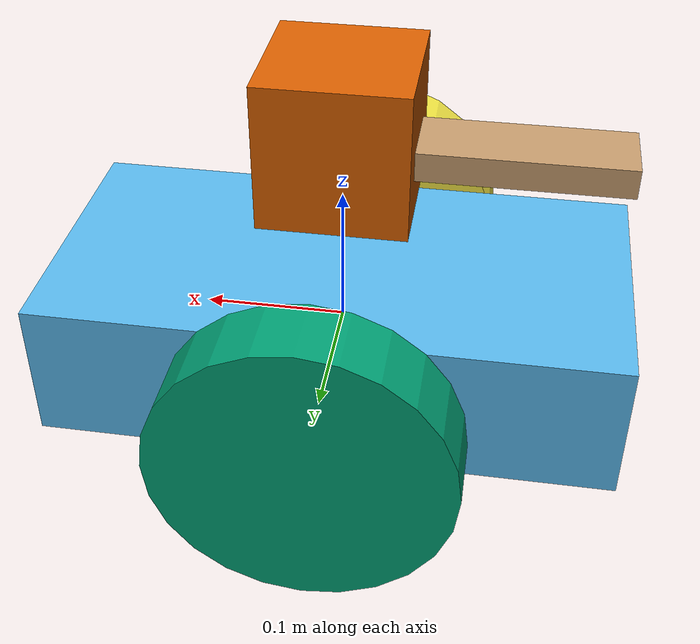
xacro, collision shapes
<?xml version='1.0'?>

<robot name="mogi_bot" xmlns:xacro="http://www.ros.org/wiki/xacro">

  <!-- ROBOT NAMESPACE -->

  <xacro:arg name="robot_name" default="robot1"/>

  <xacro:property name="robot_name" value="$(arg robot_name)"/>

  <!-- GAZEBO + MATERIALS -->

  <xacro:include filename="$(find virtual_lab)/urdf/mogi_bot.gazebo" />

  <xacro:include filename="$(find virtual_lab)/urdf/materials.xacro" />

  <!-- BASE FOOTPRINT -->

  <link name="${robot_name}/base_footprint"/>

  <!-- BASE LINK -->

  <joint name="${robot_name}/base_footprint_joint" type="fixed">

    <origin xyz="0 0 0" rpy="0 0 0"/>

    <parent link="${robot_name}/base_footprint"/>

    <child link="${robot_name}/base_link"/>

  </joint>

  <link name="${robot_name}/base_link">

    <pose>0 0 0.1 0 0 0</pose>

    <inertial>

      <mass value="15.0"/>

      <origin xyz="0 0 0" rpy="0 0 0"/>

      <inertia
        ixx="0.0625"
        ixy="0"
        ixz="0"
        iyy="0.2125"
        iyz="0"
        izz="0.25"/>

    </inertial>

    <collision name="collision">

      <origin xyz="0 0 0" rpy="0 0 0"/>

      <geometry>

        <box size=".4 .2 .1"/>

      </geometry>

    </collision>

    <visual name="base_link_visual">

      <origin xyz="0 0 0" rpy="0 0 0"/>

      <geometry>

        <mesh filename="package://virtual_lab/meshes/mogi_bot.dae"/>

      </geometry>

    </visual>

    <!-- Rear caster -->

    <collision name="rear_caster_collision">

      <origin xyz="-0.15 0 -0.05" rpy="0 0 0"/>

      <geometry>

        <sphere radius="0.0499"/>

      </geometry>

    </collision>

    <visual name="rear_caster_visual">

      <origin xyz="-0.15 0 -0.05" rpy="0 0 0"/>

      <geometry>

        <sphere radius="0.05"/>

      </geometry>

    </visual>

    <!-- Front caster -->

    <collision name="front_caster_collision">

      <origin xyz="0.15 0 -0.05" rpy="0 0 0"/>

      <geometry>

        <sphere radius="0.0499"/>

      </geometry>

    </collision>

    <visual name="front_caster_visual">

      <origin xyz="0.15 0 -0.05" rpy="0 0 0"/>

      <geometry>

        <sphere radius="0.05"/>

      </geometry>

    </visual>

  </link>

  <!-- LEFT WHEEL -->

  <joint
    type="continuous"
    name="${robot_name}/left_wheel_joint">

    <origin xyz="0 0.15 0" rpy="0 0 0"/>

    <child link="${robot_name}/left_wheel"/>

    <parent link="${robot_name}/base_link"/>

    <axis xyz="0 1 0"/>

    <limit effort="100" velocity="10"/>

    <dynamics damping="1.0" friction="1.0"/>

  </joint>

  <link name="${robot_name}/left_wheel">

    <inertial>

      <mass value="5.0"/>

      <origin xyz="0 0 0" rpy="0 1.5707 1.5707"/>

      <inertia
        ixx="0.014"
        ixy="0"
        ixz="0"
        iyy="0.014"
        iyz="0"
        izz="0.025"/>

    </inertial>

    <collision>

      <origin xyz="0 0 0" rpy="0 1.5707 1.5707"/>

      <geometry>

        <cylinder radius=".1" length=".05"/>

      </geometry>

    </collision>

    <visual name="left_wheel_visual">

      <origin xyz="0 0 0" rpy="0 1.5707 1.5707"/>

      <geometry>

        <mesh filename="package://virtual_lab/meshes/wheel.dae"/>

      </geometry>

    </visual>

  </link>

  <!-- RIGHT WHEEL -->

  <joint
    type="continuous"
    name="${robot_name}/right_wheel_joint">

    <origin xyz="0 -0.15 0" rpy="0 0 0"/>

    <child link="${robot_name}/right_wheel"/>

    <parent link="${robot_name}/base_link"/>

    <axis xyz="0 1 0"/>

    <limit effort="100" velocity="10"/>

    <dynamics damping="1.0" friction="1.0"/>

  </joint>

  <link name="${robot_name}/right_wheel">

    <inertial>

      <mass value="5.0"/>

      <origin xyz="0 0 0" rpy="0 1.5707 1.5707"/>

      <inertia
        ixx="0.014"
        ixy="0"
        ixz="0"
        iyy="0.014"
        iyz="0"
        izz="0.025"/>

    </inertial>

    <collision>

      <origin xyz="0 0 0" rpy="0 1.5707 1.5707"/>

      <geometry>

        <cylinder radius=".1" length=".05"/>

      </geometry>

    </collision>

    <visual name="right_wheel_visual">

      <origin xyz="0 0 0" rpy="0 1.5707 1.5707"/>

      <geometry>

        <mesh filename="package://virtual_lab/meshes/wheel.dae"/>

      </geometry>

    </visual>

  </link>

  <!-- WHEEL FRICTION -->

  <gazebo reference="${robot_name}/left_wheel">

    <mu1>0.2</mu1>
    <mu2>0.2</mu2>

    <kp>1000000.0</kp>
    <kd>100.0</kd>

    <minDepth>0.0001</minDepth>
    <maxVel>1.0</maxVel>

  </gazebo>

  <gazebo reference="${robot_name}/right_wheel">

    <mu1>0.2</mu1>
    <mu2>0.2</mu2>

    <kp>1000000.0</kp>
    <kd>100.0</kd>

    <minDepth>0.0001</minDepth>
    <maxVel>1.0</maxVel>

  </gazebo>

  <gazebo reference="${robot_name}/base_link">

    <mu1>0.000002</mu1>
    <mu2>0.000002</mu2>

  </gazebo>

  <!-- IMU -->

  <joint
    name="${robot_name}/imu_joint"
    type="fixed">

    <origin xyz="0 0 0" rpy="0 0 0"/>

    <parent link="${robot_name}/base_link"/>

    <child link="${robot_name}/imu_link"/>

  </joint>

  <link name="${robot_name}/imu_link"/>

  <!-- LIDAR -->

  <joint
    type="fixed"
    name="${robot_name}/scan_joint">

    <origin xyz="0 0 0.15" rpy="0 0 0"/>

    <child link="${robot_name}/lidar_link"/>

    <parent link="${robot_name}/base_link"/>

    <axis xyz="0 1 0"/>

  </joint>

  <link name="${robot_name}/lidar_link">

    <inertial>

      <mass value="1e-5"/>

      <origin xyz="0 0 0" rpy="0 0 0"/>

      <inertia
        ixx="1e-6"
        ixy="0"
        ixz="0"
        iyy="1e-6"
        iyz="0"
        izz="1e-6"/>

    </inertial>

    <collision name="collision">

      <origin xyz="0 0 0" rpy="0 0 0"/>

      <geometry>

        <box size=".1 .1 .1"/>

      </geometry>

    </collision>

    <visual name="scan_link_visual">

      <origin xyz="0 0 0" rpy="0 0 0"/>

      <geometry>

        <mesh filename="package://virtual_lab/meshes/lidar.dae"/>

      </geometry>

    </visual>

  </link>

  <material name="cardboard_brown">
    <color rgba="0.76 0.60 0.42 1.0"/>
  </material>

  <!-- LIDAR REAR TOP BOX -->

  <joint
    name="${robot_name}/lidar_rear_box_joint"
    type="fixed">

    <origin xyz="-0.12 0 0.14" rpy="0 0 0"/>

    <parent link="${robot_name}/base_link"/>

    <child link="${robot_name}/lidar_rear_box"/>

  </joint>

  <link name="${robot_name}/lidar_rear_box">

    <collision name="collision">

      <origin xyz="0 0 0" rpy="0 0 0"/>

      <geometry>

        <box size="0.14 0.05 0.02"/>

      </geometry>

    </collision>

    <visual name="visual">

      <origin xyz="0 0 0" rpy="0 0 0"/>
      <material name="cardboard_brown"/>
      <geometry>

        <box size="0.14 0.18 0.14"/>

      </geometry>

    </visual>

  </link>

  <!-- LIDAR GAZEBO SETTINGS -->

  <gazebo reference="${robot_name}/lidar_link">

    <selfCollide>false</selfCollide>

    <mu1 value="0.05"/>
    <mu2 value="0.05"/>

  </gazebo>

</robot>
